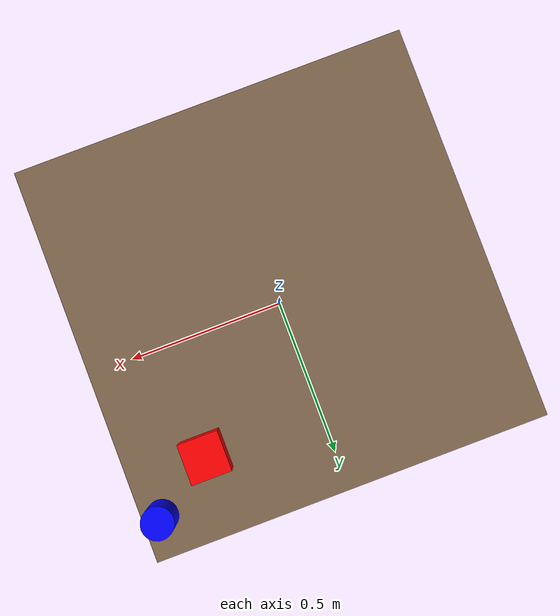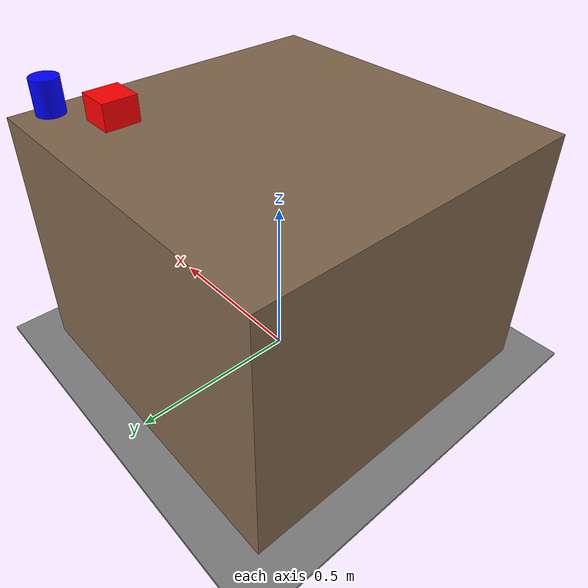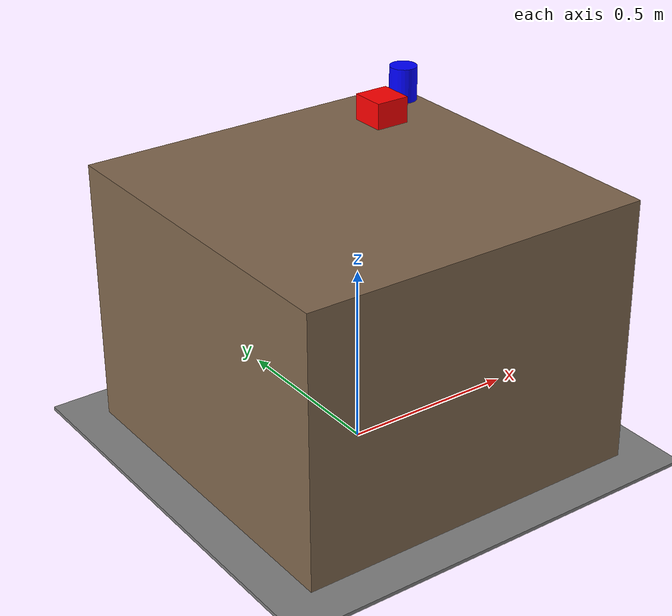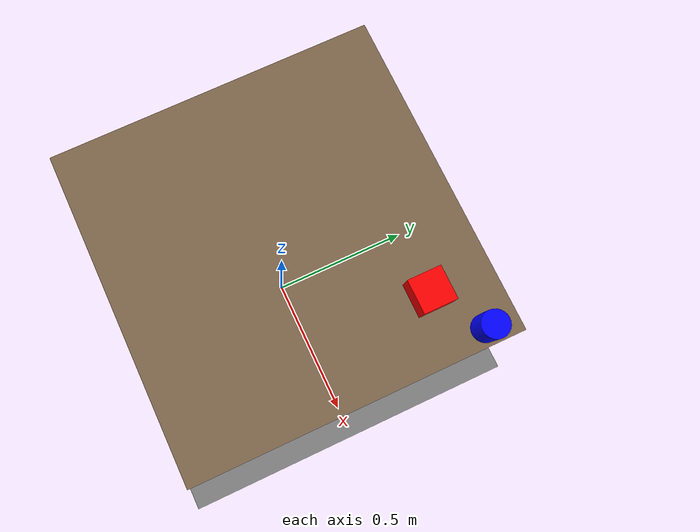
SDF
<?xml version="1.0" ?>
<sdf version="1.6">
  <world name="ultramotiv_world">

    <!-- 🌍 Environment Setup: Gravity, Lighting -->

    <!-- ☀️ Directional light source simulating sunlight -->
    <light name="sun" type="directional">
      <cast_shadows>true</cast_shadows>
      <pose>0 0 10 0 0 0</pose> <!-- Positioned above origin -->
      <diffuse>1 1 1 1</diffuse> <!-- Full white light -->
      <specular>0.1 0.1 0.1 1</specular> <!-- Low specular reflection -->
      <direction>-0.5 0.5 -1</direction> <!-- Light pointing diagonally -->
    </light>

    <!-- 🟫 Ground Plane Model -->
    <model name="custom_ground">
      <static>true</static> <!-- Does not move -->
      <link name="ground_link">
        <collision name="collision">
          <geometry>
            <box><size>10 10 0.01</size></box> <!-- Large thin box as ground -->
          </geometry>
        </collision>
        <visual name="visual">
          <geometry>
            <box><size>10 10 0.01</size></box>
          </geometry>
          <material>
            <diffuse>0.5 0.5 0.5 1</diffuse> <!-- Medium gray -->
          </material>
        </visual>
      </link>
    </model>

    <!-- 🪑 Table on which objects will be placed -->
    <model name="solid_table">
      <static>true</static>
      <link name="link">
        <pose>0 0 0.38 0 0 0</pose> <!-- Slightly raised from ground -->
        <collision name="collision">
          <geometry>
            <box><size>1.0 1.0 0.75</size></box> <!-- Table size -->
          </geometry>
        </collision>
        <visual name="visual">
          <geometry>
            <box><size>1.0 1.0 0.75</size></box>
          </geometry>
          <material>
            <ambient>0.3 0.3 0.3 1</ambient> <!-- Low ambient reflectance -->
            <diffuse>0.5 0.4 0.3 1</diffuse> <!-- Brownish color -->
          </material>
        </visual>
      </link>
    </model>

    <!-- 🟥 Red Cube Object on Table -->
    <model name="cube_object">
      <static>true</static>
      <link name="link">
        <pose>0.3 0.3 0.78 0 0 0</pose> <!-- Placed on top of the table -->
        <collision name="collision">
          <geometry>
            <box><size>0.1 0.1 0.1</size></box>
          </geometry>
        </collision>
        <visual name="visual">
          <geometry>
            <box><size>0.1 0.1 0.1</size></box>
          </geometry>
          <material>
            <ambient>0.6 0.0 0.0 1</ambient> <!-- Dark red ambient -->
            <diffuse>1.0 0.0 0.0 1</diffuse> <!-- Bright red -->
          </material>
        </visual>
      </link>
    </model>

    <!-- 🔵 Blue Cylinder Object on Table -->
    <model name="cylinder_object">
      <static>true</static>
      <link name="link">
        <pose>0.45 0.4 0.78 0 0 0</pose> <!-- Also on table -->
        <collision name="collision">
          <geometry>
            <cylinder>
              <radius>0.04</radius>
              <length>0.15</length>
            </cylinder>
          </geometry>
        </collision>
        <visual name="visual">
          <geometry>
            <cylinder>
              <radius>0.04</radius>
              <length>0.15</length>
            </cylinder>
          </geometry>
          <material>
            <ambient>0 0.0 0.6 1</ambient> <!-- Dark blue ambient -->
            <diffuse>0 0.0 1.0 1</diffuse> <!-- Bright blue -->
          </material>
        </visual>
      </link>
    </model>

  </world>
</sdf>
